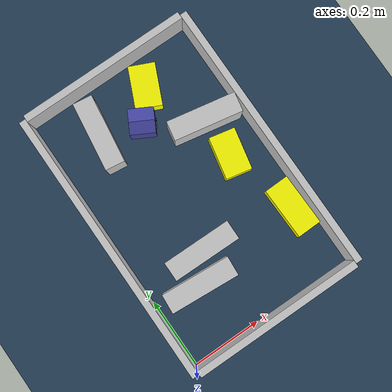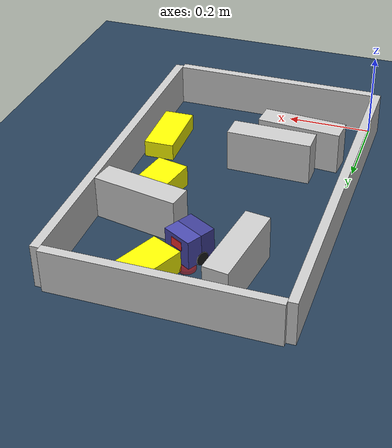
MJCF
<?xml version='1.0' encoding='utf-8'?>
<mujoco model="real_buildable">
  <compiler angle="degree" />
  <option timestep="0.002" integrator="implicitfast" iterations="100" cone="elliptic" />
  <default>
    <geom density="1" />
  </default>
  <asset>
    <texture builtin="gradient" height="3072" rgb1="0.3 0.5 0.7" rgb2="0 0 0" type="skybox" width="512" />
    <texture builtin="checker" height="300" mark="edge" markrgb="0.8 0.8 0.8" name="groundplane" rgb1="0.2 0.3 0.4" rgb2="0.1 0.2 0.3" type="2d" width="300" />
    <material name="groundplane" reflectance="0.2" texrepeat="5 5" texture="groundplane" texuniform="true" />
  </asset>
  <worldbody>
    <light dir="0 0 -1" directional="true" pos="0 0 1.5" />
    <geom name="floor" type="plane" condim="4" friction="0.5 0.005 0.001" material="groundplane" size="0 0 0.05" />
    <body name="walls">
      <geom name="wall_boundary_left" type="box" condim="4" friction="1.0 0.005 0.0001" rgba="0.8 0.8 0.8 1" pos="-0.010000 0.387500 0.050000" euler="0 0 0.000000" size="0.010000 0.397500 0.050000" />
      <geom name="wall_boundary_right" type="box" condim="4" friction="1.0 0.005 0.0001" rgba="0.8 0.8 0.8 1" pos="0.500000 0.387500 0.050000" euler="0 0 0.000000" size="0.010000 0.397500 0.050000" />
      <geom name="wall_boundary_bottom" type="box" condim="4" friction="1.0 0.005 0.0001" rgba="0.8 0.8 0.8 1" pos="0.245000 -0.010000 0.050000" euler="0 0 0.000000" size="0.245000 0.010000 0.050000" />
      <geom name="wall_boundary_top" type="box" condim="4" friction="1.0 0.005 0.0001" rgba="0.8 0.8 0.8 1" pos="0.245000 0.785000 0.050000" euler="0 0 0.000000" size="0.245000 0.010000 0.050000" />
      <geom name="wall_inner_1" type="box" condim="4" friction="1.0 0.005 0.0001" rgba="0.8 0.8 0.8 1" pos="0.130406 0.172466 0.050000" euler="0 0 -4.223531" size="0.097500 0.027500 0.050000" />
      <geom name="wall_inner_2" type="box" condim="4" friction="1.0 0.005 0.0001" rgba="0.8 0.8 0.8 1" pos="0.183492 0.241933 0.050000" euler="0 0 -0.526590" size="0.097500 0.027500 0.050000" />
      <geom name="wall_inner_3" type="box" condim="4" friction="1.0 0.005 0.0001" rgba="0.8 0.8 0.8 1" pos="0.389000 0.525000 0.050000" euler="0 0 169.300000" size="0.097500 0.027500 0.050000" />
      <geom name="wall_inner_4" type="box" condim="4" friction="1.0 0.005 0.0001" rgba="0.8 0.8 0.8 1" pos="0.137000 0.647000 0.050000" euler="0 0 82.200000" size="0.097500 0.027500 0.050000" />
    </body>
    <body name="car" pos="0.24770389269356233 0.61275737635408323 0.01" quat="0.85961474751723987 0 0 0.51094274224307368">
      <freejoint name="car_freejoint" />
      <inertial pos="0 0 0.0375" mass="0.35" diaginertia="0.000266 0.000266 0.000286" />
      <geom name="front_chassis_collision" type="box" pos="0.0175 0 0.0375" size="0.0175 0.035 0.0325" rgba="0.3 0.3 0.7 1" />
      <geom name="rear_chassis_collision" type="box" pos="-0.0175 0 0.0375" size="0.0175 0.035 0.0325" rgba="0.25 0.25 0.6 1" />
      <geom name="front_marker" type="box" pos="0.034 0 0.0505" size="0.002 0.015 0.01" rgba="1 0.2 0.2 1" contype="0" conaffinity="0" />
      <body name="rear_support_body" pos="-0.03 0 0.0025">
        <joint name="rear_caster_joint" type="ball" damping="0.0001" />
        <inertial pos="0 0 0" mass="0.025" diaginertia="0.000001 0.000001 0.000001" />
        <geom name="rear_support" type="sphere" pos="0 0 0" size="0.0025" friction="0 0 0" rgba="0.7 0.1 0.1 1" />
      </body>
      <body name="front_support_body" pos="0.03 0 0.0025">
        <joint name="front_caster_joint" type="ball" damping="0.0001" />
        <inertial pos="0 0 0" mass="0.025" diaginertia="0.000001 0.000001 0.000001" />
        <geom name="front_support" type="sphere" pos="0 0 0" size="0.0025" friction="0 0 0" rgba="0.1 0.7 0.1 1" />
      </body>
      <body name="left_wheel" pos="0 0.0375 0.015">
        <inertial pos="0 0 0" mass="0.05" diaginertia="0.000003 0.000006 0.000003" />
        <joint name="left_wheel_joint" type="hinge" axis="0 1 0" damping="0.01" armature="0.0001" />
        <geom name="left_wheel_collision" type="cylinder" size="0.015 0.0005" euler="90 0 0" rgba="0.1 0.1 0.1 1" />
      </body>
      <body name="right_wheel" pos="0 -0.0375 0.015">
        <inertial pos="0 0 0" mass="0.05" diaginertia="0.000003 0.000006 0.000003" />
        <joint name="right_wheel_joint" type="hinge" axis="0 1 0" damping="0.01" armature="0.0001" />
        <geom name="right_wheel_collision" type="cylinder" size="0.015 0.0005" euler="90 0 0" rgba="0.1 0.1 0.1 1" />
      </body>
    </body>
    <body name="obstacle_0_movable">
      <geom name="obstacle_0_movable" condim="4" pos="0.39498529620838957 0.4111035460043429 0.025000000000000001" friction="1 0.005 0.0001" rgba="1 1 0 1" size="0.037500 0.060000 0.025000" type="box" mass="0.1" quat="0.10274732711916844 0 0 0.9947074880435286" />
      <joint type="free" />
    </body>
    <body name="obstacle_1_movable">
      <geom name="obstacle_1_movable" condim="4" pos="0.31109689077767272 0.69219411960320032 0.025000000000000001" friction="1 0.005 0.0001" rgba="1 1 0 1" size="0.037500 0.060000 0.025000" type="box" mass="0.1" quat="0.97774297466018145 0 0 -0.20980628089420908" />
      <joint type="free" />
    </body>
    <body name="obstacle_2_movable">
      <geom name="obstacle_2_movable" condim="4" pos="0.45126199999999994 0.1998639999999999 0.02" friction="1 0.005 0.0001" rgba="1 1 0 1" size="0.035000 0.075000 0.020000" type="box" mass="0.1" quat="0.99993489935645363 0 0 0.011410392149222008" />
      <joint type="free" />
    </body>
    <site name="goal" type="sphere" pos="0.245000 0.640000 0.0" size="0.02" rgba="1 0 0 0.5" />
  </worldbody>
  <actuator>
    <velocity name="left_wheel_drive" joint="left_wheel_joint" ctrlrange="-25 25" kv="0.75" forcerange="-0.5 0.5" />
    <velocity name="right_wheel_drive" joint="right_wheel_joint" ctrlrange="-25 25" kv="0.75" forcerange="-0.5 0.5" />
  </actuator>
</mujoco>
